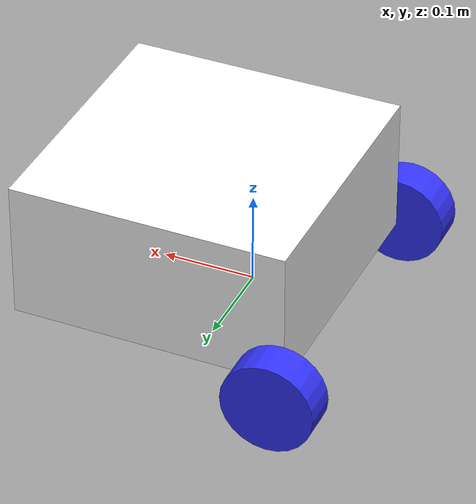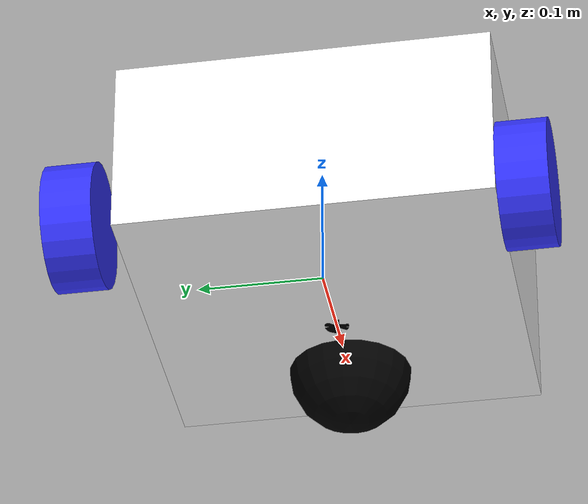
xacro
<?xml version="1.0"?>
<robot xmlns:xacro="http://www.ros.org/wiki/xacro"  name="robot">

  <xacro:include filename="robot_core.xacro" />

  <!-- Over here we include the file that defines extra Gazebo options and motion control driver -->
  <xacro:include filename="$(find my_bot)/description/gazebo_control.xacro" />
  <xacro:include filename="$(find my_bot)/description/lidar.xacro" />
  <xacro:include filename="$(find my_bot)/description/camera.xacro" />
</robot>

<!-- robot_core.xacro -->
<robot name="my_bot_ddr" xmlns:xacro="http://www.ros.org/wiki/xacro" >
  <xacro:include filename="inertial_macros.xacro"/>

  <material name="white">
    <color rgba="1 1 1 1" />
  </material>

  <material name="orange">
    <color rgba="1 0.3 0.1 1"/>
  </material>

  <material name="blue">
    <color rgba="0.2 0.2 1 1"/>
  </material>

  <material name="black">
    <color rgba="0 0 0 1"/>
  </material>

  <material name="red">
    <color rgba="1 0 0 1"/>
  </material>

  <!-- BASE LINK -->
  <link name="base_link"></link>

  <!-- BASE_FOOTPRINT LINK -->

  <joint name="base_footprint_joint" type="fixed">
    <parent link="base_link"/>
    <child link="base_footprint"/>
    <origin xyz="0 0 0" rpy="0 0 0"/>
  </joint>

  <link name="base_footprint">
  </link>

  <!-- CHASSIS LINK -->
  <joint name="chassis_joint" type="fixed">
    <parent link="base_link"/>
    <child link="chassis"/>
    <origin xyz="-0.1 0 0"/>
  </joint>

  <link name="chassis">
    <visual>
      <origin xyz="0.15 0 0.075"/>
      <geometry>
        <box size="0.3 0.3 0.15"/>
      </geometry>
      <material name="white"/>
    </visual>
    <collision>
      <origin xyz="0.15 0 0.075"/>
      <geometry>
        <box size="0.3 0.3 0.15"/>
      </geometry>
    </collision>
    <xacro:inertial_box mass="0.5" x="0.3" y="0.3" z="0.15">
        <origin xyz="0.15 0 0.075" rpy="0 0 0"/>
    </xacro:inertial_box>
  </link>

  <!-- LEFT WHEEL LINK -->
  <joint name="left_wheel_joint" type="continuous">
    <parent link="chassis"/>
    <child link="left_wheel"/>
    <origin xyz="0 0.175 0" rpy="-${pi/2} 0 0" />
    <axis xyz="0 0 1"/>
  </joint>

  <link name="left_wheel">
    <visual>
      <geometry>
        <cylinder radius="0.05" length="0.04"/>
      </geometry>
      <material name="blue"/>
    </visual>
    <collision>
      <geometry>
        <sphere radius="0.05" />
      </geometry>
    </collision>
    <xacro:inertial_cylinder mass="0.1" length="0.04" radius="0.05">
      <origin xyz="0 0 0" rpy="0 0 0"/>
    </xacro:inertial_cylinder>
  </link>

  <!-- RIGHT WHEEL LINK -->
  <joint name="right_wheel_joint" type="continuous">
    <parent link="chassis"/>
    <child link="right_wheel"/>
    <origin xyz="0 -0.175 0" rpy="${pi/2} 0 0" />
    <axis xyz="0 0 -1"/>
  </joint>

  <link name="right_wheel">
    <visual>
      <geometry>
        <cylinder radius="0.05" length="0.04"/>
      </geometry>
      <material name="blue"/>
    </visual>
    <collision>
      <geometry>
        <sphere radius="0.05" />
      </geometry>
    </collision>
    <xacro:inertial_cylinder mass="0.1" length="0.04" radius="0.05">
      <origin xyz="0 0 0" rpy="0 0 0"/>
    </xacro:inertial_cylinder>
  </link>

  <!-- CASTER WHEEL LINK -->

  <joint name="caster_wheel_joint" type="fixed">
    <parent link="chassis"/>
    <child link="caster_wheel"/>
    <origin xyz="0.24 0 0"/>
  </joint>

  <link name="caster_wheel">
    <visual>
      <geometry>
        <sphere radius="0.05"/>
      </geometry>
      <material name="black"/>
    </visual>
    <collision>
      <geometry>
        <sphere radius="0.05"/>
      </geometry>
    </collision>
    <xacro:inertial_sphere mass="0.1" radius="0.05">
      <origin xyz="0 0 0" rpy="0 0 0"/>
    </xacro:inertial_sphere>
  </link>
</robot>

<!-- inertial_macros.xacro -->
<robot xmlns:xacro="http://www.ros.org/wiki/xacro">

  <!-- Specify some standard inertial calculations
  https://en.wikipedia.org/wiki/List_of_moments_of_inertia -->
  <!-- These make use of xacro's mathematical functionality -->

  <xacro:macro name="inertial_sphere" params="mass radius *origin">
    <inertial>
      <xacro:insert_block name="origin" />
      <mass value="${mass}" />
      <inertia ixx="${(2/5) * mass * (radius*radius)}" ixy="0.0" ixz="0.0"
        iyy="${(2/5) * mass * (radius*radius)}" iyz="0.0"
        izz="${(2/5) * mass * (radius*radius)}" />
    </inertial>
  </xacro:macro>

  <xacro:macro name="inertial_box" params="mass x y z *origin">
    <inertial>
      <xacro:insert_block name="origin" />
      <mass value="${mass}" />
      <inertia ixx="${(1/12) * mass * (y*y+z*z)}" ixy="0.0" ixz="0.0"
        iyy="${(1/12) * mass * (x*x+z*z)}" iyz="0.0"
        izz="${(1/12) * mass * (x*x+y*y)}" />
    </inertial>
  </xacro:macro>

  <xacro:macro name="inertial_cylinder" params="mass length radius *origin">
    <inertial>
      <xacro:insert_block name="origin" />
      <mass value="${mass}" />
      <inertia ixx="${(1/12) * mass * (3*radius*radius + length*length)}" ixy="0.0" ixz="0.0"
        iyy="${(1/12) * mass * (3*radius*radius + length*length)}" iyz="0.0"
        izz="${(1/2) * mass * (radius*radius)}" />
    </inertial>
  </xacro:macro>
</robot>

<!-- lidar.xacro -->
<robot xmlns:xacro="http://www.ros.org/wiki/xacro" >

    <joint name="laser_joint" type="fixed">
        <parent link="chassis"/>
        <child link="laser_frame"/>
        <origin xyz="0.17 0 0.10" rpy="0 0 0"/>
    </joint>

    <link name="laser_frame">
        <visual>
            <geometry>
                <cylinder radius="0.05" length="0.08"/>
            </geometry>
            <material name="red"/>
        </visual>
        <visual>
            <origin xyz="0 0 -0.05"/>
            <geometry>
                <cylinder radius="0.01" length="0.1"/>
            </geometry>
            <material name="black"/>
        </visual>
        <collision>
            <geometry>
                <cylinder radius="0.05" length="0.08"/>
            </geometry>
        </collision>
        <xacro:inertial_cylinder mass="0.1" length="0.08" radius="0.05">
            <origin xyz="0 0 0" rpy="0 0 0"/>
        </xacro:inertial_cylinder>
    </link>

    <gazebo reference="laser_frame">
        <material>Gazebo/Red</material>
        <sensor name="laser" type="ray">
            <pose> 0 0 0 0 0 0 </pose>
            <visualize>true</visualize> <!-- visualize can be true or false depending upon the user interest to operate lidar -->
            <update_rate>10</update_rate>
            <ray>
                <scan>
                    <horizontal>
                        <samples>360</samples>
                        <min_angle>-3.14</min_angle>
                        <max_angle>3.14</max_angle>
                    </horizontal>
                </scan>
                <range>
                    <min>0.3</min>
                    <max>12</max>
                </range>
            </ray>
            <plugin name="laser_controller" filename="libgazebo_ros_ray_sensor.so">
                <ros>
                    <argument>~/out:=scan</argument>
                </ros>
                <output_type>sensor_msgs/LaserScan</output_type>
                <frame_name>laser_frame</frame_name>
            </plugin>
        </sensor>
    </gazebo>

</robot>

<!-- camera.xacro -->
<robot xmlns:xacro="http://www.ros.org/wiki/xacro" >

    <joint name="camera_joint" type="fixed">
        <parent link="chassis"/>
        <child link="camera_link"/>
        <origin xyz="0.25 0 0.08" rpy="0 0 0"/>
    </joint>

    <link name="camera_link">
        <visual>
            <geometry>
                <box size="0.03 0.07 0.02"/>
            </geometry>
            <material name="blue"/>
        </visual>
    </link>

    <joint name="camera_optical_joint" type="fixed">
        <parent link="camera_link"/>
        <child link="camera_link_optical"/>
        <origin xyz="0 0 0" rpy="${-pi/2} 0 ${-pi/2}"/>
    </joint>

    <link name="camera_link_optical"></link>

    <gazebo reference="camera_link">
        <material>Gazebo/Blue</material>

        <sensor name="camera" type="camera">
            <pose> 0 0 0 0 0 0 </pose>
            <visualize>true</visualize>
            <update_rate>10</update_rate>
            <camera>
                <horizontal_fov>1.089</horizontal_fov>
                <image>
                    <format>R8G8B8</format>
                    <width>640</width>
                    <height>480</height> <!--The image is 640x480 pixels, stored as 8-bit RGB-->
                </image>
                <clip>
                    <near>0.05</near>
                    <far>8.0</far>
                </clip>
            </camera>
            <plugin name="camera_controller" filename="libgazebo_ros_camera.so">
                <frame_name>camera_link_optical</frame_name>
            </plugin>
        </sensor>
    </gazebo>

</robot>
